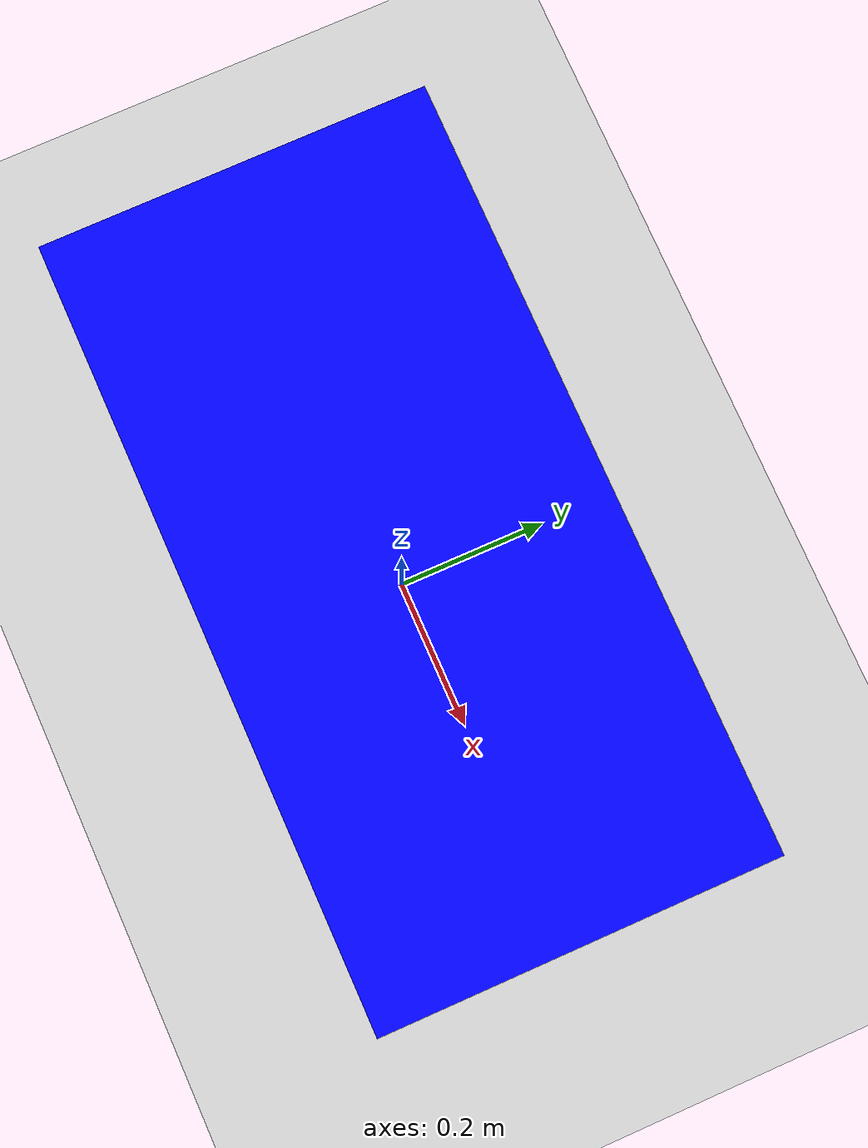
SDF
<?xml version="1.0" ?>
<sdf version="1.9">
  <world name="helios_world">
    <include>
      <uri>model://ground_plane</uri>
    </include>
    <include>
      <uri>model://sun</uri>
    </include>
    <include>
      <uri>file://helios_robot.sdf</uri>
      <pose>0 0 0.2 0 0 0</pose>
    </include>
  </world>
</sdf>

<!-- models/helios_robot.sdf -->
<sdf version="1.9">
  <model name="helios_robot">
    <!-- Base Link -->
    <link name="base_link">
      <visual name="base_link_visual">
        <geometry>
          <box>
            <size>1.0 0.5 0.2</size>
          </box>
        </geometry>
        <material>
          <diffuse>0 0 1 1</diffuse>
        </material>
      </visual>
      <collision name="base_link_collision">
        <geometry>
          <box>
            <size>1.0 0.5 0.2</size>
          </box>
        </geometry>
      </collision>
      <inertial>
        <mass>10.0</mass>
        <inertia>
          <ixx>1.0</ixx>
          <ixy>0.0</ixy>
          <ixz>0.0</ixz>
          <iyy>1.0</iyy>
          <iyz>0.0</iyz>
          <izz>1.0</izz>
        </inertia>
      </inertial>
    </link>

    <!-- Left Wheel -->
    <link name="left_wheel">
      <visual name="left_wheel_visual">
        <geometry>
          <cylinder>
            <radius>0.1</radius>
            <length>0.05</length>
          </cylinder>
        </geometry>
        <material>
          <diffuse>0 0 0 1</diffuse>
        </material>
      </visual>
      <collision name="left_wheel_collision">
        <geometry>
          <cylinder>
            <radius>0.1</radius>
            <length>0.05</length>
          </cylinder>
        </geometry>
      </collision>
      <inertial>
        <mass>1.0</mass>
        <inertia>
          <ixx>0.1</ixx>
          <ixy>0.0</ixy>
          <ixz>0.0</ixz>
          <iyy>0.1</iyy>
          <iyz>0.0</iyz>
          <izz>0.1</izz>
        </inertia>
      </inertial>
    </link>
    <joint name="left_wheel_joint" type="revolute">
      <parent>base_link</parent>
      <child>left_wheel</child>
      <pose>0 0.3 -0.1 1.5708 0 0</pose>
      <axis>
        <xyz>0 1 0</xyz>
        <limit>
          <lower>-1e+16</lower>
          <upper>1e+16</upper>
        </limit>
      </axis>
    </joint>

    <!-- Right Wheel -->
    <link name="right_wheel">
      <visual name="right_wheel_visual">
        <geometry>
          <cylinder>
            <radius>0.1</radius>
            <length>0.05</length>
          </cylinder>
        </geometry>
        <material>
          <diffuse>0 0 0 1</diffuse>
        </material>
      </visual>
      <collision name="right_wheel_collision">
        <geometry>
          <cylinder>
            <radius>0.1</radius>
            <length>0.05</length>
          </cylinder>
        </geometry>
      </collision>
      <inertial>
        <mass>1.0</mass>
        <inertia>
          <ixx>0.1</ixx>
          <ixy>0.0</ixy>
          <ixz>0.0</ixz>
          <iyy>0.1</iyy>
          <iyz>0.0</iyz>
          <izz>0.1</izz>
        </inertia>
      </inertial>
    </link>
    <joint name="right_wheel_joint" type="revolute">
      <parent>base_link</parent>
      <child>right_wheel</child>
      <pose>0 -0.3 -0.1 1.5708 0 0</pose>
      <axis>
        <xyz>0 1 0</xyz>
        <limit>
          <lower>-1e+16</lower>
          <upper>1e+16</upper>
        </limit>
      </axis>
    </joint>

    <!-- Front Caster -->
    <link name="front_caster">
      <visual name="front_caster_visual">
        <geometry>
          <sphere>
            <radius>0.05</radius>
          </sphere>
        </geometry>
        <material>
          <diffuse>0.5 0.5 0.5 1</diffuse>
        </material>
      </visual>
      <collision name="front_caster_collision">
        <geometry>
          <sphere>
            <radius>0.05</radius>
          </sphere>
        </geometry>
      </collision>
      <inertial>
        <mass>0.5</mass>
        <inertia>
          <ixx>0.01</ixx>
          <ixy>0.0</ixy>
          <ixz>0.0</ixz>
          <iyy>0.01</iyy>
          <iyz>0.0</iyz>
          <izz>0.01</izz>
        </inertia>
      </inertial>
    </link>
    <joint name="front_caster_joint" type="fixed">
      <parent>base_link</parent>
      <child>front_caster</child>
      <pose>0.5 0 -0.15 0 0 0</pose>
    </joint>

    <!-- Rear Caster -->
    <link name="rear_caster">
      <visual name="rear_caster_visual">
        <geometry>
          <sphere>
            <radius>0.05</radius>
          </sphere>
        </geometry>
        <material>
          <diffuse>0.5 0.5 0.5 1</diffuse>
        </material>
      </visual>
      <collision name="rear_caster_collision">
        <geometry>
          <sphere>
            <radius>0.05</radius>
          </sphere>
        </geometry>
      </collision>
      <inertial>
        <mass>0.5</mass>
        <inertia>
          <ixx>0.01</ixx>
          <ixy>0.0</ixy>
          <ixz>0.0</ixz>
          <iyy>0.01</iyy>
          <iyz>0.0</iyz>
          <izz>0.01</izz>
        </inertia>
      </inertial>
    </link>
    <joint name="rear_caster_joint" type="fixed">
      <parent>base_link</parent>
      <child>rear_caster</child>
      <pose>-0.5 0 -0.15 0 0 0</pose>
    </joint>

    <!-- Lidar -->
    <link name="lidar_link">
      <visual name="lidar_visual">
        <geometry>
          <cylinder>
            <radius>0.05</radius>
            <length>0.1</length>
          </cylinder>
        </geometry>
        <material>
          <diffuse>1 0 0 1</diffuse>
        </material>
      </visual>
      <sensor name="lidar" type="gpu_lidar">
        <always_on>true</always_on>
        <update_rate>10</update_rate>
        <visualize>true</visualize>
        <pose>0 0 0 0 0 0</pose>
        <ray>
          <scan>
            <horizontal>
              <samples>360</samples>
              <resolution>1</resolution>
              <min_angle>-3.14</min_angle>
              <max_angle>3.14</max_angle>
            </horizontal>
          </scan>
          <range>
            <min>0.1</min>
            <max>10.0</max>
            <resolution>0.01</resolution>
          </range>
        </ray>
        <topic>/lidar</topic>
      </sensor>
    </link>
    <joint name="lidar_joint" type="fixed">
      <parent>base_link</parent>
      <child>lidar_link</child>
      <pose>0.5 0 0.2 0 0 0</pose>
    </joint>

    <!-- Depth Camera -->
    <link name="depth_camera_link">
      <visual name="depth_camera_visual">
        <geometry>
          <box>
            <size>0.05 0.1 0.05</size>
          </box>
        </geometry>
        <material>
          <diffuse>0 1 0 1</diffuse>
        </material>
      </visual>
      <sensor name="depth_camera" type="depth_camera">
        <always_on>true</always_on>
        <update_rate>30</update_rate>
        <visualize>true</visualize>
        <pose>0 0 0 0 0 0</pose>
        <camera>
          <horizontal_fov>1.047</horizontal_fov>
          <image>
            <width>640</width>
            <height>480</height>
            <format>R8G8B8</format>
          </image>
          <clip>
            <near>0.1</near>
            <far>100</far>
          </clip>
          <depth_camera>
            <range>
              <min>0.1</min>
              <max>10.0</max>
            </range>
          </depth_camera>
        </camera>
        <topic>/depth_camera</topic>
      </sensor>
    </link>
    <joint name="depth_camera_joint" type="fixed">
      <parent>base_link</parent>
      <child>depth_camera_link</child>
      <pose>0.4 0 0.3 0 0 0</pose>
    </joint>

    <!-- Differential Drive Plugin -->
    <plugin name="ign_ros2_control" filename="libign_ros2_control-system.so">
      <robot_param>robot_control.yaml</robot_param>
    </plugin>
  </model>
</sdf>
